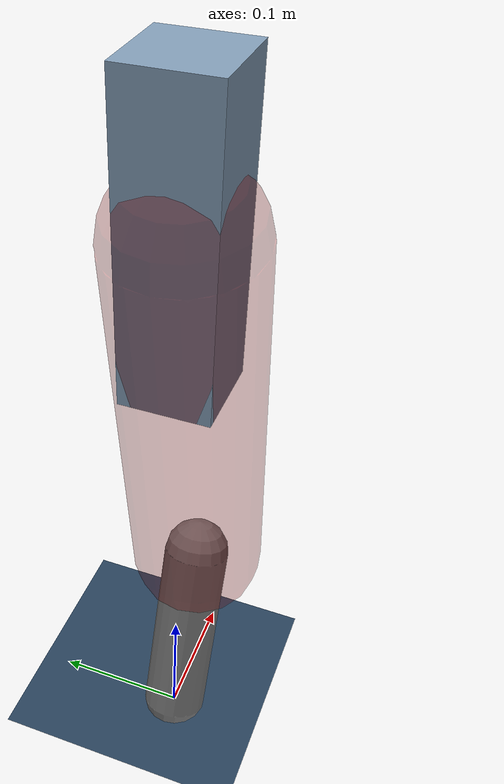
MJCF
<mujoco model="Hopper2D">
	<compiler inertiafromgeom="true" angle="radian" />
	<option timestep="0.001" integrator="implicit" cone="elliptic" solver="Newton" tolerance="1e-10" />

	<default>
		<geom contype="1" conaffinity="1" condim="3" friction="2 0.005 0.0001" solref="0.005 1" />
		<joint limited="true" damping="0.1" />
	</default>

	<asset>
		<texture name="skybox" type="skybox" builtin="gradient" rgb1=".4 .6 .8" rgb2="0 0 0" width="800" height="800" />
		<texture name="grid" type="2d" builtin="checker" rgb1=".1 .2 .3" rgb2=".2 .3 .4" width="300" height="300" mark="edge" markrgb=".2 .3 .4" />
		<material name="ground" texture="grid" texrepeat="1 1" texuniform="true" reflectance="0.1" />
		<material name="leg" rgba="0.5 0.6 0.7 1" />
	</asset>

	<worldbody>

		<geom name="floor" type="plane" size="5 5 0.25" material="ground" />

		<light directional="false" diffuse="0.8 0.8 0.8" specular="0.3 0.3 0.3" pos="0 0 2" dir="0 0 -1" />
		<light mode="targetbodycom" target="base" directional="false" diffuse="0.8 0.8 0.8" specular="0.3 0.3 0.3" pos="0 0 2" dir="0 0 -1" />

		<camera name="fixed" pos="0 -2 1" xyaxes="1 0 0 0 0 1" />
		<camera name="tracking" mode="trackcom" pos="0 -3 1" />

		<body name="root" pos="0 0 0.4349165427212724">
			<joint name="slide_x" type="slide" axis="1 0 0" range="-100 100" />
			<joint name="slide_z" type="slide" axis="0 0 1" range="0 10" />

			<body name="base" pos="0 0 0">
				<geom name="torso" type="box" size="0.03 0.03 0.1" mass="3.1310000000000002" material="leg" />

				<body name="link1" pos="0 0 0" euler="0 1.4202741667887218 0">
					<joint type="hinge" axis="0 -1 0" pos="0 0 0" name="hinge1" limited="true" range="-3.14 3.14" stiffness="0" damping="0.1" />
					<geom name="thigh" type="capsule" fromto="0 0 0 0.2948968876258471 0 0" size="0.05" rgba="0.5 0 0 0.3" mass="0.9750215965897872" />

					<body name="link2" pos="0.2948968876258471 0 0" euler="0 0.44973554317614106 0">
						<joint type="hinge" axis="0 -1 0" pos="0 0 0" name="hinge2" limited="true" range="-3.14 3.14" stiffness="0" damping="0.1" />
						<geom name="shank" type="capsule" fromto="0 0 0 0.1500196550954253 0 0" size="0.025" mass="0.3577176895858828" />

					</body>
				</body>
			</body>
		</body>
	</worldbody>

	<actuator>
		<motor name="torque1" joint="hinge1" ctrlrange="-125.74510084924972 125.74510084924972" ctrllimited="true" gear="1" />
		<motor name="torque2" joint="hinge2" ctrlrange="-29.00855377858686 29.00855377858686" ctrllimited="true" gear="1" />
	</actuator>
</mujoco>
